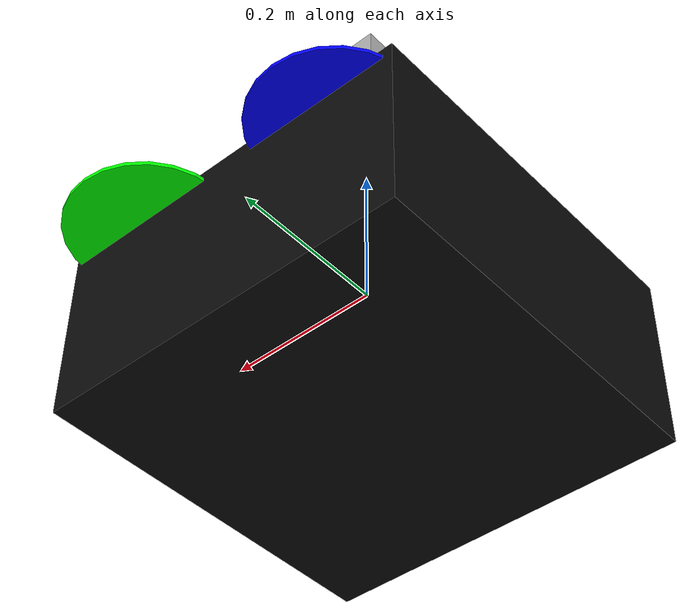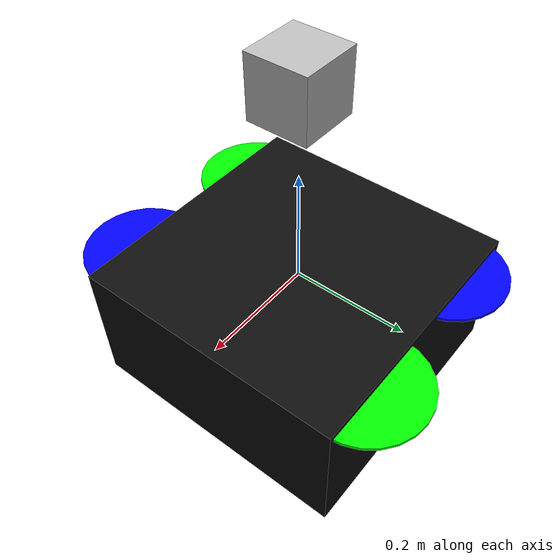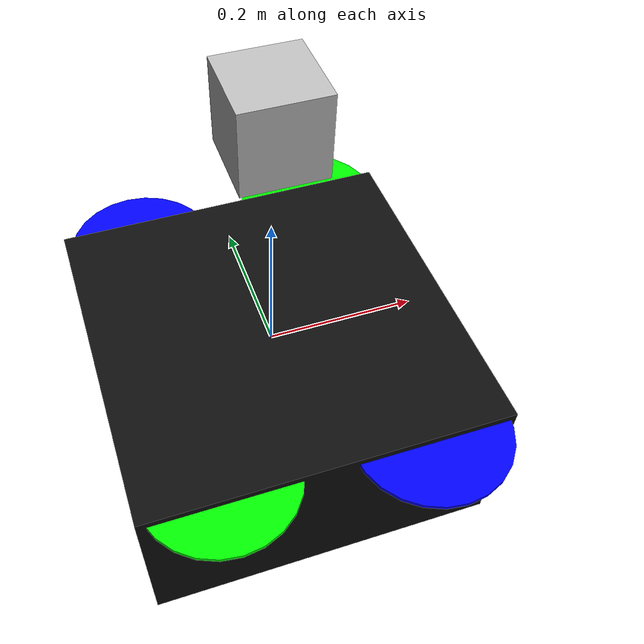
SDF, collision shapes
<?xml version="1.0" ?>
<sdf version="1.6">
	<model name="iris_with_ardupilot">
		<include>
			<uri>model://iris_with_rangefinders</uri>
		</include>
		<plugin filename="gz-sim-joint-state-publisher-system" name="gz::sim::systems::JointStatePublisher"/>
		<plugin filename="gz-sim-lift-drag-system" name="gz::sim::systems::LiftDrag">
			<a0>0.3</a0>
			<alpha_stall>1.4</alpha_stall>
			<cla>4.2500</cla>
			<cda>0.10</cda>
			<cma>0.0</cma>
			<cla_stall>-0.025</cla_stall>
			<cda_stall>0.0</cda_stall>
			<cma_stall>0.0</cma_stall>
			<area>0.002</area>
			<air_density>1.2041</air_density>
			<cp>0.084 0 0</cp>
			<forward>0 1 0</forward>
			<upward>0 0 1</upward>
			<link_name>iris_with_rangefinders::rotor_0</link_name>
		</plugin>
		<plugin filename="gz-sim-lift-drag-system" name="gz::sim::systems::LiftDrag">
			<a0>0.3</a0>
			<alpha_stall>1.4</alpha_stall>
			<cla>4.2500</cla>
			<cda>0.10</cda>
			<cma>0.0</cma>
			<cla_stall>-0.025</cla_stall>
			<cda_stall>0.0</cda_stall>
			<cma_stall>0.0</cma_stall>
			<area>0.002</area>
			<air_density>1.2041</air_density>
			<cp>-0.084 0 0</cp>
			<forward>0 -1 0</forward>
			<upward>0 0 1</upward>
			<link_name>iris_with_rangefinders::rotor_0</link_name>
		</plugin>
		<plugin filename="gz-sim-lift-drag-system" name="gz::sim::systems::LiftDrag">
			<a0>0.3</a0>
			<alpha_stall>1.4</alpha_stall>
			<cla>4.2500</cla>
			<cda>0.10</cda>
			<cma>0.0</cma>
			<cla_stall>-0.025</cla_stall>
			<cda_stall>0.0</cda_stall>
			<cma_stall>0.0</cma_stall>
			<area>0.002</area>
			<air_density>1.2041</air_density>
			<cp>0.084 0 0</cp>
			<forward>0 1 0</forward>
			<upward>0 0 1</upward>
			<link_name>iris_with_rangefinders::rotor_1</link_name>
		</plugin>
		<plugin filename="gz-sim-lift-drag-system" name="gz::sim::systems::LiftDrag">
			<a0>0.3</a0>
			<alpha_stall>1.4</alpha_stall>
			<cla>4.2500</cla>
			<cda>0.10</cda>
			<cma>0.0</cma>
			<cla_stall>-0.025</cla_stall>
			<cda_stall>0.0</cda_stall>
			<cma_stall>0.0</cma_stall>
			<area>0.002</area>
			<air_density>1.2041</air_density>
			<cp>-0.084 0 0</cp>
			<forward>0 -1 0</forward>
			<upward>0 0 1</upward>
			<link_name>iris_with_rangefinders::rotor_1</link_name>
		</plugin>
		<plugin filename="gz-sim-lift-drag-system" name="gz::sim::systems::LiftDrag">
			<a0>0.3</a0>
			<alpha_stall>1.4</alpha_stall>
			<cla>4.2500</cla>
			<cda>0.10</cda>
			<cma>0.0</cma>
			<cla_stall>-0.025</cla_stall>
			<cda_stall>0.0</cda_stall>
			<cma_stall>0.0</cma_stall>
			<area>0.002</area>
			<air_density>1.2041</air_density>
			<cp>0.084 0 0</cp>
			<forward>0 -1 0</forward>
			<upward>0 0 1</upward>
			<link_name>iris_with_rangefinders::rotor_2</link_name>
		</plugin>
		<plugin filename="gz-sim-lift-drag-system" name="gz::sim::systems::LiftDrag">
			<a0>0.3</a0>
			<alpha_stall>1.4</alpha_stall>
			<cla>4.2500</cla>
			<cda>0.10</cda>
			<cma>0.0</cma>
			<cla_stall>-0.025</cla_stall>
			<cda_stall>0.0</cda_stall>
			<cma_stall>0.0</cma_stall>
			<area>0.002</area>
			<air_density>1.2041</air_density>
			<cp>-0.084 0 0</cp>
			<forward>0 1 0</forward>
			<upward>0 0 1</upward>
			<link_name>iris_with_rangefinders::rotor_2</link_name>
		</plugin>
		<plugin filename="gz-sim-lift-drag-system" name="gz::sim::systems::LiftDrag">
			<a0>0.3</a0>
			<alpha_stall>1.4</alpha_stall>
			<cla>4.2500</cla>
			<cda>0.10</cda>
			<cma>0.0</cma>
			<cla_stall>-0.025</cla_stall>
			<cda_stall>0.0</cda_stall>
			<cma_stall>0.0</cma_stall>
			<area>0.002</area>
			<air_density>1.2041</air_density>
			<cp>0.084 0 0</cp>
			<forward>0 -1 0</forward>
			<upward>0 0 1</upward>
			<link_name>iris_with_rangefinders::rotor_3</link_name>
		</plugin>
		<plugin filename="gz-sim-lift-drag-system" name="gz::sim::systems::LiftDrag">
			<a0>0.3</a0>
			<alpha_stall>1.4</alpha_stall>
			<cla>4.2500</cla>
			<cda>0.10</cda>
			<cma>0.0</cma>
			<cla_stall>-0.025</cla_stall>
			<cda_stall>0.0</cda_stall>
			<cma_stall>0.0</cma_stall>
			<area>0.002</area>
			<air_density>1.2041</air_density>
			<cp>-0.084 0 0</cp>
			<forward>0 1 0</forward>
			<upward>0 0 1</upward>
			<link_name>iris_with_rangefinders::rotor_3</link_name>
		</plugin>
		<plugin filename="gz-sim-apply-joint-force-system" name="gz::sim::systems::ApplyJointForce">
			<joint_name>iris_with_rangefinders::rotor_0_joint</joint_name>
		</plugin>
		<plugin filename="gz-sim-apply-joint-force-system" name="gz::sim::systems::ApplyJointForce">
			<joint_name>iris_with_rangefinders::rotor_1_joint</joint_name>
		</plugin>
		<plugin filename="gz-sim-apply-joint-force-system" name="gz::sim::systems::ApplyJointForce">
			<joint_name>iris_with_rangefinders::rotor_2_joint</joint_name>
		</plugin>
		<plugin filename="gz-sim-apply-joint-force-system" name="gz::sim::systems::ApplyJointForce">
			<joint_name>iris_with_rangefinders::rotor_3_joint</joint_name>
		</plugin>
		<plugin filename="ArduPilotPlugin" name="ArduPilotPlugin">
			<!-- Port settings -->
			<fdm_addr>127.0.0.1</fdm_addr>
			<fdm_port_in>9002</fdm_port_in>
			<connectionTimeoutMaxCount>5</connectionTimeoutMaxCount>
			<lock_step>1</lock_step>
			<have_32_channels>0</have_32_channels>
			<!-- Frame conventions
        Require by ArduPilot: change model and gazebo from XYZ to XY-Z coordinates
      -->
			<modelXYZToAirplaneXForwardZDown degrees="true">0 0 0 180 0 0</modelXYZToAirplaneXForwardZDown>
			<gazeboXYZToNED degrees="true">0 0 0 180 0 90</gazeboXYZToNED>
			<!-- Sensors -->
			<imuName>iris_with_rangefinders::imu_link::imu_sensor</imuName>
			<!-- Range Finders -->
			<rngFnd1>iris_with_rangefinders::lidar_link::gpu_lidar_1</rngFnd1>
			<rngFnd2>iris_with_rangefinders::lidar_link::gpu_lidar_2</rngFnd2>
			<rngFnd3>iris_with_rangefinders::lidar_link::gpu_lidar_3</rngFnd3>
			<!--
          incoming control command [0, 1]
          so offset it by 0 to get [0, 1]
          and divide max target by 1.
          offset = 0
          multiplier = 838 max rpm / 1 = 838
        -->
			<control channel="0">
				<jointName>iris_with_rangefinders::rotor_0_joint</jointName>
				<useForce>1</useForce>
				<multiplier>838</multiplier>
				<offset>0</offset>
				<servo_min>1100</servo_min>
				<servo_max>1900</servo_max>
				<type>VELOCITY</type>
				<p_gain>0.20</p_gain>
				<i_gain>0</i_gain>
				<d_gain>0</d_gain>
				<i_max>0</i_max>
				<i_min>0</i_min>
				<cmd_max>2.5</cmd_max>
				<cmd_min>-2.5</cmd_min>
				<controlVelocitySlowdownSim>1</controlVelocitySlowdownSim>
			</control>
			<control channel="1">
				<jointName>iris_with_rangefinders::rotor_1_joint</jointName>
				<useForce>1</useForce>
				<multiplier>838</multiplier>
				<offset>0</offset>
				<servo_min>1100</servo_min>
				<servo_max>1900</servo_max>
				<type>VELOCITY</type>
				<p_gain>0.20</p_gain>
				<i_gain>0</i_gain>
				<d_gain>0</d_gain>
				<i_max>0</i_max>
				<i_min>0</i_min>
				<cmd_max>2.5</cmd_max>
				<cmd_min>-2.5</cmd_min>
				<controlVelocitySlowdownSim>1</controlVelocitySlowdownSim>
			</control>
			<control channel="2">
				<jointName>iris_with_rangefinders::rotor_2_joint</jointName>
				<useForce>1</useForce>
				<multiplier>-838</multiplier>
				<offset>0</offset>
				<servo_min>1100</servo_min>
				<servo_max>1900</servo_max>
				<type>VELOCITY</type>
				<p_gain>0.20</p_gain>
				<i_gain>0</i_gain>
				<d_gain>0</d_gain>
				<i_max>0</i_max>
				<i_min>0</i_min>
				<cmd_max>2.5</cmd_max>
				<cmd_min>-2.5</cmd_min>
				<controlVelocitySlowdownSim>1</controlVelocitySlowdownSim>
			</control>
			<control channel="3">
				<jointName>iris_with_rangefinders::rotor_3_joint</jointName>
				<useForce>1</useForce>
				<multiplier>-838</multiplier>
				<offset>0</offset>
				<servo_min>1100</servo_min>
				<servo_max>1900</servo_max>
				<type>VELOCITY</type>
				<p_gain>0.20</p_gain>
				<i_gain>0</i_gain>
				<d_gain>0</d_gain>
				<i_max>0</i_max>
				<i_min>0</i_min>
				<cmd_max>2.5</cmd_max>
				<cmd_min>-2.5</cmd_min>
				<controlVelocitySlowdownSim>1</controlVelocitySlowdownSim>
			</control>
		</plugin>
	</model>
</sdf>

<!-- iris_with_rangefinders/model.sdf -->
<sdf version='1.9'>
  <model name='iris_with_rangefinders'>
    <pose>0 0 0 0 0 0</pose>
    <link name='base_link'>
      <velocity_decay>
        <linear>0.0</linear>
        <angular>0.0</angular>
      </velocity_decay>
      <inertial>
        <pose>0 0 0 0 0 0</pose>
        <mass>1.5</mass>
        <inertia>
          <ixx>0.008</ixx>
          <ixy>0</ixy>
          <ixz>0</ixz>
          <iyy>0.015</iyy>
          <iyz>0</iyz>
          <izz>0.017</izz>
        </inertia>
      </inertial>
      <collision name='base_collision'>
        <pose>0 0 -0.08 0 0 0</pose>
        <geometry>
          <box>
            <size>0.47 0.47 0.23</size>
          </box>
        </geometry>
        <surface>
          <contact>
            <ode>
              <max_vel>100.0</max_vel>
              <min_depth>0.001</min_depth>
            </ode>
          </contact>
          <friction>
            <ode>
              <mu>100000.0</mu>
              <mu2>100000.0</mu2>
            </ode>
          </friction>
        </surface>
      </collision>
      <visual name='base_visual'>
        <geometry>
          <mesh>
            <uri>model://iris_with_rangefinders/meshes/iris.dae</uri>
          </mesh>
        </geometry>
        <material>
          <ambient>0.05 0.05 0.05</ambient>
          <diffuse>0.05 0.05 0.05</diffuse>
          <specular>1 1 1 1</specular>
          <pbr>
            <metal>
              <metalness>0.5</metalness>
              <roughness>0.5</roughness>
            </metal>
          </pbr>
        </material>
      </visual>

      <visual name='front_left_leg_visual'>
        <pose>0.123 0.22 -0.11 0 0 0</pose>
        <geometry>
          <cylinder>
            <radius>0.005</radius>
            <length>0.17</length>
          </cylinder>
        </geometry>
        <material>
          <ambient>0.05 0.05 0.05</ambient>
          <diffuse>0.05 0.05 0.05</diffuse>
          <specular>0.01 0.01 0.01 1.0</specular>
          <pbr>
            <metal>
              <metalness>0.5</metalness>
              <roughness>0.5</roughness>
            </metal>
          </pbr>
        </material>
      </visual>
      <visual name='front_right_leg_visual'>
        <pose>0.123 -0.22 -0.11 0 0 0</pose>
        <geometry>
          <cylinder>
            <radius>0.005</radius>
            <length>0.17</length>
          </cylinder>
        </geometry>
        <material>
          <ambient>0.05 0.05 0.05</ambient>
          <diffuse>0.05 0.05 0.05</diffuse>
          <specular>0.01 0.01 0.01 1.0</specular>
          <pbr>
            <metal>
              <metalness>0.5</metalness>
              <roughness>0.5</roughness>
            </metal>
          </pbr>
        </material>
      </visual>
      <visual name='rear_left_leg_visual'>
        <pose>-0.140 0.21 -0.11 0 0 0</pose>
        <geometry>
          <cylinder>
            <radius>0.005</radius>
            <length>0.17</length>
          </cylinder>
        </geometry>
        <material>
          <ambient>0.05 0.05 0.05</ambient>
          <diffuse>0.05 0.05 0.05</diffuse>
          <specular>0.01 0.01 0.01 1.0</specular>
          <pbr>
            <metal>
              <metalness>0.5</metalness>
              <roughness>0.5</roughness>
            </metal>
          </pbr>
        </material>
      </visual>
      <visual name='rear_right_leg_visual'>
        <pose>-0.140 -0.21 -0.11 0 0 0</pose>
        <geometry>
          <cylinder>
            <radius>0.005</radius>
            <length>0.17</length>
          </cylinder>
        </geometry>
        <material>
          <ambient>0.05 0.05 0.05</ambient>
          <diffuse>0.05 0.05 0.05</diffuse>
          <specular>0.01 0.01 0.01 1.0</specular>
          <pbr>
            <metal>
              <metalness>0.5</metalness>
              <roughness>0.5</roughness>
            </metal>
          </pbr>
        </material>
      </visual>
    </link>
         <!--add lidar-->
    <link name="lidar_link">
      <pose>0 0 0.05 0 0 0</pose>
      <inertial>
        <mass>0.016</mass>
        <inertia>
          <ixx>0.0001</ixx>
          <ixy>0</ixy>
          <ixz>0</ixz>
          <iyy>0.0001</iyy>
          <iyz>0</iyz>
          <izz>0.0001</izz>
          <!-- low intertia necessary to avoid not disturb the drone -->
        </inertia>
      </inertial>
      <collision name="collision">
        <pose>0 0 0.3 0 0 0</pose>
        <geometry>
          <box>
            <size>0.1 0.1 0.1</size>
          </box>
        </geometry>
      </collision>
      <visual name="visual">
        <geometry>
          <box>
            <size>0.1 0.1 0.1</size>
          </box>
        </geometry>
      </visual>
      <!-- Front Lidar -->
      <sensor name="gpu_lidar_1" type="gpu_lidar">
        <pose>0 0 0 0 0 0</pose>
        <topic>lidar_1</topic>
        <update_rate>20</update_rate>
        <lidar>
          <scan>
            <horizontal>
              <samples>50</samples>
              <resolution>1</resolution>
              <min_angle>-0.34</min_angle>
              <max_angle>0.34</max_angle>
            </horizontal>
            <!-- Comment veritcal block for 2d lidar -->
            <vertical>
              <samples>50</samples>
              <resolution>1</resolution>
              <min_angle>0.0</min_angle>
              <max_angle>0.261799</max_angle>
            </vertical>
          </scan>
          <range>
            <min>0.01</min>
            <max>10</max>
            <resolution>0.1</resolution>
          </range>
        </lidar>
        <always_on>1</always_on>
        <visualize>true</visualize>
      </sensor>
      <!-- Back Lidar -->
      <sensor name="gpu_lidar_2" type="gpu_lidar">
        <pose>0 0 0 0 0 3.14</pose>
        <topic>lidar_2</topic>
        <update_rate>20</update_rate>
        <lidar>
          <scan>
            <horizontal>
              <samples>50</samples>
              <resolution>1</resolution>
              <min_angle>-0.34</min_angle>
              <max_angle>0.34</max_angle>
            </horizontal>
            <!-- Comment veritcal block for 2d lidar -->
            <vertical>
              <samples>50</samples>
              <resolution>1</resolution>
              <min_angle>0.0</min_angle>
              <max_angle>0.261799</max_angle>
            </vertical>
          </scan>
          <range>
            <min>0.01</min>
            <max>10</max>
            <resolution>0.1</resolution>
          </range>
        </lidar>
        <always_on>1</always_on>
        <visualize>true</visualize>
      </sensor>
      <!-- Down Lidar -->
      <sensor name="gpu_lidar_3" type="gpu_lidar">
        <pose>0 0 -0.11 0 1.570796 0</pose>
        <topic>lidar_3</topic>
        <update_rate>20</update_rate>
        <lidar>
          <scan>
            <horizontal>
              <samples>30</samples>
              <resolution>1</resolution>
              <min_angle>-0.34</min_angle>
              <max_angle>0.34</max_angle>
            </horizontal>
            <!-- Comment veritcal block for 2d lidar -->
            <vertical>
              <samples>30</samples>
              <resolution>1</resolution>
              <min_angle>-0.34</min_angle>
              <max_angle>0.34</max_angle>
            </vertical>
          </scan>
          <range>
            <min>0.01</min>
            <max>10</max>
            <resolution>0.1</resolution>
          </range>
        </lidar>
        <always_on>1</always_on>
        <visualize>true</visualize>
      </sensor>
    </link>
    <joint name="lidar_sensor_joint" type="fixed">
      <parent>base_link</parent>
      <child>lidar_link</child>
    </joint>
    <link name='imu_link'>
      <inertial>
        <pose>0 0 0 0 0 0</pose>
        <mass>0.15</mass>
        <inertia>
          <ixx>0.00001</ixx>
          <ixy>0</ixy>
          <ixz>0</ixz>
          <iyy>0.00002</iyy>
          <iyz>0</iyz>
          <izz>0.00002</izz>
        </inertia>
      </inertial>
      <sensor name="imu_sensor" type="imu">
        <pose degrees="true">0 0 0 180 0 0</pose>
        <always_on>1</always_on>
        <update_rate>1000.0</update_rate>
      </sensor>
    </link>
    <joint name='imu_joint' type='revolute'>
      <child>imu_link</child>
      <parent>base_link</parent>
      <axis>
        <xyz>0 0 1</xyz>
        <limit>
          <lower>0</lower>
          <upper>0</upper>
          <effort>0</effort>
          <velocity>0</velocity>
        </limit>
        <dynamics>
          <damping>1.0</damping>
        </dynamics>
      </axis>
    </joint>
    <link name='rotor_0'>
      <pose>0.13 -0.22 0.023 0 0 0</pose>
      <inertial>
        <pose>0 0 0 0 0 0</pose>
        <mass>0.025</mass>
        <inertia>
          <ixx>9.75e-06</ixx>
          <ixy>0</ixy>
          <ixz>0</ixz>
          <iyy>0.000166704</iyy>
          <iyz>0</iyz>
          <izz>0.000167604</izz>
        </inertia>
      </inertial>
      <collision name='rotor_0_collision'>
        <pose>0 0 0 0 0 0</pose>
        <geometry>
          <cylinder>
            <length>0.005</length>
            <radius>0.1</radius>
          </cylinder>
        </geometry>
        <surface>
          <contact>
            <ode/>
          </contact>
          <friction>
            <ode/>
          </friction>
        </surface>
      </collision>
      <visual name='rotor_0_visual'>
        <pose>0 0 0 0 0 0</pose>
        <geometry>
          <mesh>
            <scale>1 1 1</scale>
            <uri>model://iris_with_rangefinders/meshes/iris_prop_ccw.dae</uri>
          </mesh>
        </geometry>
        <material>
          <ambient>0 0 1</ambient>
          <diffuse>0 0 1</diffuse>
          <specular>1 1 1 1</specular>
          <pbr>
            <metal>
              <metalness>0.5</metalness>
              <roughness>0.5</roughness>
            </metal>
          </pbr>
        </material>
      </visual>
      <gravity>1</gravity>
      <velocity_decay/>
      <self_collide>0</self_collide>
    </link>
    <joint name='rotor_0_joint' type='revolute'>
      <child>rotor_0</child>
      <parent>base_link</parent>
      <axis>
        <xyz>0 0 1</xyz>
        <limit>
          <lower>-1e+16</lower>
          <upper>1e+16</upper>
        </limit>
        <dynamics>
          <damping>0.004</damping>
        </dynamics>
      </axis>
      <physics>
        <ode>
          <implicit_spring_damper>1</implicit_spring_damper>
        </ode>
      </physics>
    </joint>
    <link name='rotor_1'>
      <pose>-0.13 0.2 0.023 0 0 0</pose>
      <inertial>
        <pose>0 0 0 0 0 0</pose>
        <mass>0.025</mass>
        <inertia>
          <ixx>9.75e-06</ixx>
          <ixy>0</ixy>
          <ixz>0</ixz>
          <iyy>0.000166704</iyy>
          <iyz>0</iyz>
          <izz>0.000167604</izz>
        </inertia>
      </inertial>
      <collision name='rotor_1_collision'>
        <pose>0 0 0 0 0 0</pose>
        <geometry>
          <cylinder>
            <length>0.005</length>
            <radius>0.1</radius>
          </cylinder>
        </geometry>
        <surface>
          <contact>
            <ode/>
          </contact>
          <friction>
            <ode/>
          </friction>
        </surface>
      </collision>
      <visual name='rotor_1_visual'>
        <pose>0 0 0 0 0 0</pose>
        <geometry>
          <mesh>
            <scale>1 1 1</scale>
            <uri>model://iris_with_rangefinders/meshes/iris_prop_ccw.dae</uri>
          </mesh>
        </geometry>
        <material>
          <ambient>0 0 1 1</ambient>
          <diffuse>0 0 1 1</diffuse>
          <specular>1 1 1 1</specular>
          <pbr>
            <metal>
              <metalness>0.5</metalness>
              <roughness>0.5</roughness>
            </metal>
          </pbr>
        </material>
      </visual>
      <gravity>1</gravity>
      <velocity_decay/>
      <self_collide>0</self_collide>
    </link>
    <joint name='rotor_1_joint' type='revolute'>
      <child>rotor_1</child>
      <parent>base_link</parent>
      <axis>
        <xyz>0 0 1</xyz>
        <limit>
          <lower>-1e+16</lower>
          <upper>1e+16</upper>
        </limit>
        <dynamics>
          <damping>0.004</damping>
        </dynamics>
      </axis>
      <physics>
        <ode>
          <implicit_spring_damper>1</implicit_spring_damper>
        </ode>
      </physics>
    </joint>
    <link name='rotor_2'>
      <pose>0.13 0.22 0.023 0 0 0</pose>
      <inertial>
        <pose>0 0 0 0 0 0</pose>
        <mass>0.025</mass>
        <inertia>
          <ixx>9.75e-06</ixx>
          <ixy>0</ixy>
          <ixz>0</ixz>
          <iyy>0.000166704</iyy>
          <iyz>0</iyz>
          <izz>0.000167604</izz>
        </inertia>
      </inertial>
      <collision name='rotor_2_collision'>
        <pose>0 0 0 0 0 0</pose>
        <geometry>
          <cylinder>
            <length>0.005</length>
            <radius>0.1</radius>
          </cylinder>
        </geometry>
        <surface>
          <contact>
            <ode/>
          </contact>
          <friction>
            <ode/>
          </friction>
        </surface>
      </collision>
      <visual name='rotor_2_visual'>
        <pose>0 0 0 0 0 0</pose>
        <geometry>
          <mesh>
            <scale>1 1 1</scale>
            <uri>model://iris_with_rangefinders/meshes/iris_prop_cw.dae</uri>
          </mesh>
        </geometry>
        <material>
          <ambient>0 1 0</ambient>
          <diffuse>0 1 0</diffuse>
          <specular>1 1 1 1</specular>
          <pbr>
            <metal>
              <metalness>0.5</metalness>
              <roughness>0.5</roughness>
            </metal>
          </pbr>
        </material>
      </visual>
      <gravity>1</gravity>
      <velocity_decay/>
      <self_collide>0</self_collide>
    </link>
    <joint name='rotor_2_joint' type='revolute'>
      <child>rotor_2</child>
      <parent>base_link</parent>
      <axis>
        <xyz>0 0 1</xyz>
        <limit>
          <lower>-1e+16</lower>
          <upper>1e+16</upper>
        </limit>
        <dynamics>
          <damping>0.004</damping>
        </dynamics>
      </axis>
      <physics>
        <ode>
          <implicit_spring_damper>1</implicit_spring_damper>
        </ode>
      </physics>
    </joint>
    <link name='rotor_3'>
      <pose>-0.13 -0.2 0.023 0 0 0</pose>
      <inertial>
        <pose>0 0 0 0 0 0</pose>
        <mass>0.025</mass>
        <inertia>
          <ixx>9.75e-06</ixx>
          <ixy>0</ixy>
          <ixz>0</ixz>
          <iyy>0.000166704</iyy>
          <iyz>0</iyz>
          <izz>0.000167604</izz>
        </inertia>
      </inertial>
      <collision name='rotor_3_collision'>
        <pose>0 0 0 0 0 0</pose>
        <geometry>
          <cylinder>
            <length>0.005</length>
            <radius>0.1</radius>
          </cylinder>
        </geometry>
        <surface>
          <contact>
            <ode/>
          </contact>
          <friction>
            <ode/>
          </friction>
        </surface>
      </collision>
      <visual name='rotor_3_visual'>
        <pose>0 0 0 0 0 0</pose>
        <geometry>
          <mesh>
            <scale>1 1 1</scale>
            <uri>model://iris_with_rangefinders/meshes/iris_prop_cw.dae</uri>
          </mesh>
        </geometry>
        <material>
          <ambient>0 1 0</ambient>
          <diffuse>0 1 0</diffuse>
          <specular>1 1 1 1</specular>
          <pbr>
            <metal>
              <metalness>0.5</metalness>
              <roughness>0.5</roughness>
            </metal>
          </pbr>
        </material>
      </visual>
      <gravity>1</gravity>
      <velocity_decay/>
      <self_collide>0</self_collide>
    </link>
    <joint name='rotor_3_joint' type='revolute'>
      <child>rotor_3</child>
      <parent>base_link</parent>
      <axis>
        <xyz>0 0 1</xyz>
        <limit>
          <lower>-1e+16</lower>
          <upper>1e+16</upper>
        </limit>
        <dynamics>
          <damping>0.004</damping>
        </dynamics>
      </axis>
      <physics>
        <ode>
          <implicit_spring_damper>1</implicit_spring_damper>
        </ode>
      </physics>
    </joint>
  </model>
</sdf>
